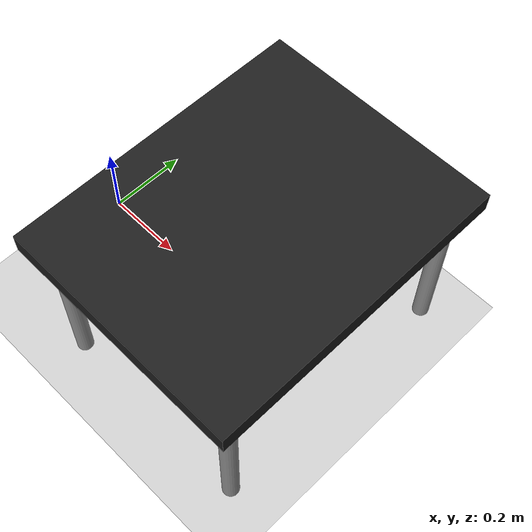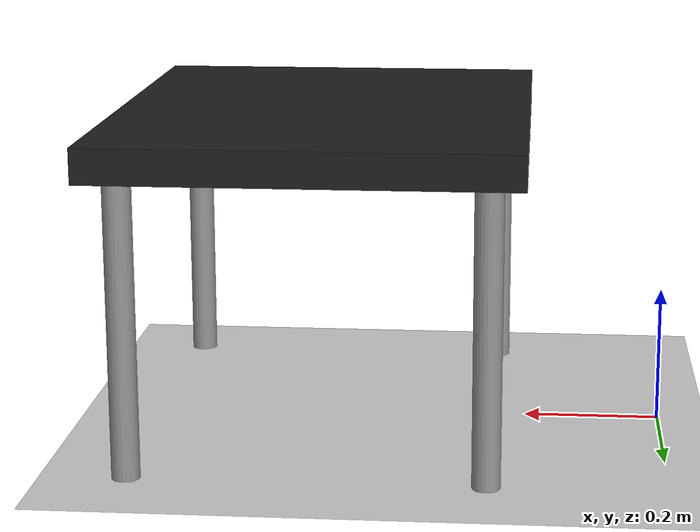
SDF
<sdf version="1.4">
 <world name="default">
  <physics type="ode">
   <gravity>0 0 -9.81</gravity>
   <ode>
    <solver><type>quick</type><iters>20</iters><sor>1</sor></solver>
    <constraints>
     <cfm>0</cfm>
     <erp>0.2</erp>
     <contact_max_correcting_vel>100</contact_max_correcting_vel>
     <contact_surface_layer>0</contact_surface_layer>
    </constraints>
   </ode>
   <real_time_update_rate>1000</real_time_update_rate>
   <max_step_size>0.001</max_step_size>
   <real_time_factor>1</real_time_factor>
  </physics>
  <light name="sun" type="directional">
   <pose>0 0 10 0 -0 0</pose>
   <diffuse>0.8 0.8 0.8 1</diffuse>
   <specular>0.2 0.2 0.2 1</specular>
   <attenuation>
    <range>1000</range>
    <constant>0.9</constant>
    <linear>0.01</linear>
    <quadratic>0.001</quadratic>
   </attenuation>
   <direction>-0.5 0.1 -0.9</direction>
  </light>
  <model name="ground_plane">
   <static>1</static>
   <link name="link">
    <collision name="collision">
     <geometry><plane><normal>0 0 1</normal><size>100 100</size></plane></geometry>
     <surface><friction><ode><mu>100</mu><mu2>50</mu2></ode></friction></surface>
    </collision>
    <visual name="visual">
     <cast_shadows>0</cast_shadows>
     <geometry><plane><normal>0 0 1</normal><size>100 100</size></plane></geometry>
     <material>
      <script><uri>file://media/materials/scripts/gazebo.material</uri><name>Gazebo/Grey</name></script>
     </material>
    </visual>
    <velocity_decay><linear>0</linear><angular>0</angular></velocity_decay>
   </link>
  </model>
  <scene><ambient>0.4 0.4 0.4 1</ambient><background>0.7 0.7 0.7 1</background><shadows>1</shadows></scene>
  <spherical_coordinates>
   <surface_model>EARTH_WGS84</surface_model>
   <latitude_deg>0</latitude_deg>
   <longitude_deg>0</longitude_deg>
   <elevation>0</elevation>
   <heading_deg>0</heading_deg>
  </spherical_coordinates>
  <model name="table">
   <static>1</static>
   <link name="link">
    <collision name="surface">
     <pose>0 0 0.45 0 -0 0</pose>
     <geometry><box><size>0.6 0.75 0.05</size></box></geometry>
    </collision>
    <visual name="visual1">
     <pose>0 0 0.45 0 -0 0</pose>
     <geometry><box><size>0.6 0.75 0.05</size></box></geometry>
     <material>
      <script><uri>file://media/materials/scripts/gazebo.material</uri><name>Gazebo/Black</name></script>
     </material>
    </visual>
    <collision name="front_left_leg">
     <pose>0.25 0.32 0.22 0 -0 0</pose>
     <geometry><cylinder><radius>0.02</radius><length>0.44</length></cylinder></geometry>
    </collision>
    <visual name="front_left_leg">
     <pose>0.25 0.32 0.22 0 -0 0</pose>
     <geometry><cylinder><radius>0.02</radius><length>0.44</length></cylinder></geometry>
     <material>
      <script><uri>file://media/materials/scripts/gazebo.material</uri><name>Gazebo/Grey</name></script>
     </material>
    </visual>
    <collision name="front_right_leg">
     <pose>0.25 -0.32 0.22 0 -0 0</pose>
     <geometry><cylinder><radius>0.02</radius><length>0.44</length></cylinder></geometry>
    </collision>
    <visual name="front_right_leg">
     <pose>0.25 -0.32 0.22 0 -0 0</pose>
     <geometry><cylinder><radius>0.02</radius><length>0.44</length></cylinder></geometry>
     <material>
      <script><uri>file://media/materials/scripts/gazebo.material</uri><name>Gazebo/Grey</name></script>
     </material>
    </visual>
    <collision name="back_right_leg">
     <pose>-0.25 -0.32 0.22 0 -0 0</pose>
     <geometry><cylinder><radius>0.02</radius><length>0.44</length></cylinder></geometry>
    </collision>
    <visual name="back_right_leg">
     <pose>-0.25 -0.32 0.22 0 -0 0</pose>
     <geometry><cylinder><radius>0.02</radius><length>0.44</length></cylinder></geometry>
     <material>
      <script><uri>file://media/materials/scripts/gazebo.material</uri><name>Gazebo/Grey</name></script>
     </material>
    </visual>
    <collision name="back_left_leg">
     <pose>-0.25 0.32 0.22 0 -0 0</pose>
     <geometry><cylinder><radius>0.02</radius><length>0.44</length></cylinder></geometry>
    </collision>
    <visual name="back_left_leg">
     <pose>-0.25 0.32 0.22 0 -0 0</pose>
     <geometry><cylinder><radius>0.02</radius><length>0.44</length></cylinder></geometry>
     <material>
      <script><uri>file://media/materials/scripts/gazebo.material</uri><name>Gazebo/Grey</name></script>
     </material>
    </visual>
    <velocity_decay><linear>0</linear><angular>0</angular></velocity_decay>
   </link>
   <pose>0.5 0 0 0 -0 0</pose>
  </model>
 </world>
</sdf>
